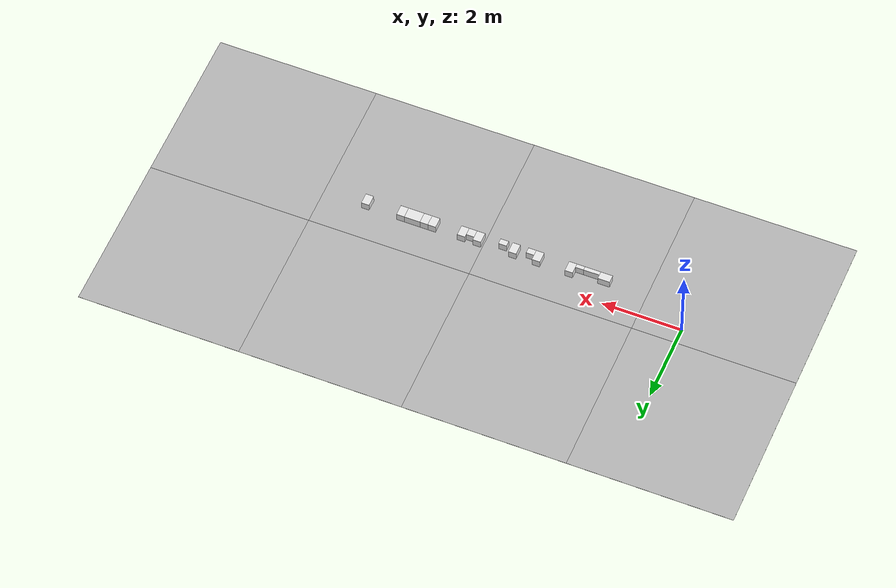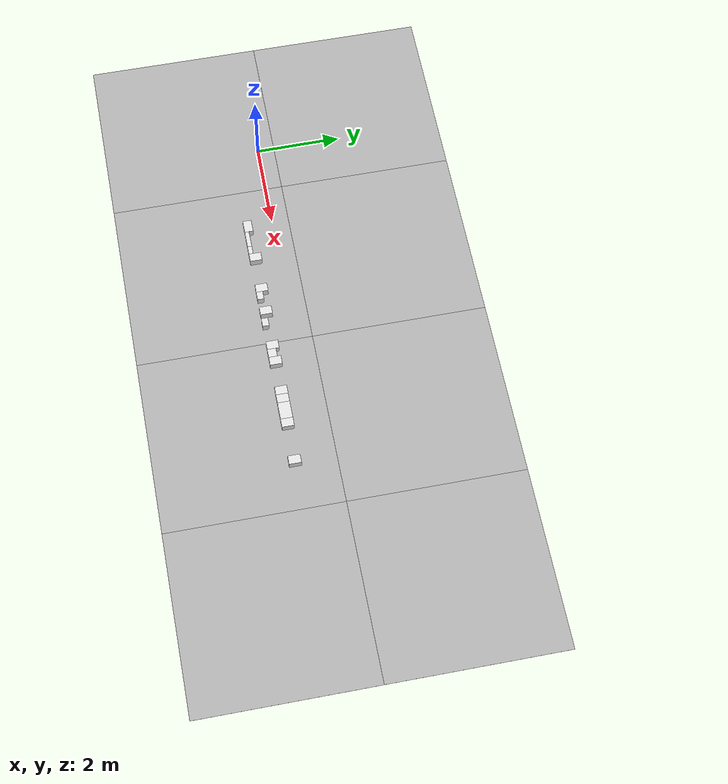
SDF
<sdf version='1.6'><world name='default'>
    <light name='sun_light' type='directional'>
      <pose frame=''>0 0 10 0 -0 0</pose>
      <diffuse>0.5 0.5 0.5 1</diffuse>
      <specular>0.1 0.1 0.1 1</specular>
      <direction>0.1 0.1 -0.9</direction>
      <attenuation>
        <range>20</range>
        <constant>0.5</constant>
        <linear>0.01</linear>
        <quadratic>0.001</quadratic>
      </attenuation>
      <cast_shadows>1</cast_shadows>
    </light>

    <model name='Tile/0-0'>
      <static>1</static>
      <link name='link'>
        <collision name='collision'>
          <geometry>
            <plane>
              <normal>0 0 1</normal>
              <size>4.096 4.096</size>
            </plane>
          </geometry>
          <surface>
            <friction>
              <ode>
                <mu>100</mu>
                <mu2>50</mu2>
              </ode>
              <torsional>
                <ode/>
              </torsional>
            </friction>
            <contact>
              <ode/>
            </contact>
            <bounce/>
          </surface>
          <max_contacts>10</max_contacts>
        </collision>
        <visual name='visual'>
          <cast_shadows>0</cast_shadows>
          <geometry>
            <plane>
              <normal>0 0 1</normal>
              <size>4.096 4.096</size>
            </plane>
          </geometry>
          <material>
            <script>
              <uri>file://materials/scripts</uri>
              <uri>file://materials/textures</uri>
              <name>Tile/aa44efc093d15b0d016b671cb8dad8b9b5925cd42bc6b331ef31decf4ba6863e</name>
            </script>
          </material>
        </visual>
        <self_collide>0</self_collide>
        <enable_wind>0</enable_wind>
        <kinematic>0</kinematic>
      </link>
      <pose frame=''>-0.952 -1.6520000000000001 0 0 -0 0</pose>
    </model>

    <model name='Tile/0-1'>
      <static>1</static>
      <link name='link'>
        <collision name='collision'>
          <geometry>
            <plane>
              <normal>0 0 1</normal>
              <size>4.096 4.096</size>
            </plane>
          </geometry>
          <surface>
            <friction>
              <ode>
                <mu>100</mu>
                <mu2>50</mu2>
              </ode>
              <torsional>
                <ode/>
              </torsional>
            </friction>
            <contact>
              <ode/>
            </contact>
            <bounce/>
          </surface>
          <max_contacts>10</max_contacts>
        </collision>
        <visual name='visual'>
          <cast_shadows>0</cast_shadows>
          <geometry>
            <plane>
              <normal>0 0 1</normal>
              <size>4.096 4.096</size>
            </plane>
          </geometry>
          <material>
            <script>
              <uri>file://materials/scripts</uri>
              <uri>file://materials/textures</uri>
              <name>Tile/6681b896b1587d54cb69aadeb5fb7247b4d6d500490292053e67105ac88ca889</name>
            </script>
          </material>
        </visual>
        <self_collide>0</self_collide>
        <enable_wind>0</enable_wind>
        <kinematic>0</kinematic>
      </link>
      <pose frame=''>-0.952 2.444 0 0 -0 0</pose>
    </model>

    <model name='Tile/1-0'>
      <static>1</static>
      <link name='link'>
        <collision name='collision'>
          <geometry>
            <plane>
              <normal>0 0 1</normal>
              <size>4.096 4.096</size>
            </plane>
          </geometry>
          <surface>
            <friction>
              <ode>
                <mu>100</mu>
                <mu2>50</mu2>
              </ode>
              <torsional>
                <ode/>
              </torsional>
            </friction>
            <contact>
              <ode/>
            </contact>
            <bounce/>
          </surface>
          <max_contacts>10</max_contacts>
        </collision>
        <visual name='visual'>
          <cast_shadows>0</cast_shadows>
          <geometry>
            <plane>
              <normal>0 0 1</normal>
              <size>4.096 4.096</size>
            </plane>
          </geometry>
          <material>
            <script>
              <uri>file://materials/scripts</uri>
              <uri>file://materials/textures</uri>
              <name>Tile/66b04c06e993a75800033641e9b5393d0fd3ce9fb1b62bc7b6392c1c421e40d7</name>
            </script>
          </material>
        </visual>
        <self_collide>0</self_collide>
        <enable_wind>0</enable_wind>
        <kinematic>0</kinematic>
      </link>
      <pose frame=''>3.144 -1.6520000000000001 0 0 -0 0</pose>
    </model>

    <model name='Tile/1-1'>
      <static>1</static>
      <link name='link'>
        <collision name='collision'>
          <geometry>
            <plane>
              <normal>0 0 1</normal>
              <size>4.096 4.096</size>
            </plane>
          </geometry>
          <surface>
            <friction>
              <ode>
                <mu>100</mu>
                <mu2>50</mu2>
              </ode>
              <torsional>
                <ode/>
              </torsional>
            </friction>
            <contact>
              <ode/>
            </contact>
            <bounce/>
          </surface>
          <max_contacts>10</max_contacts>
        </collision>
        <visual name='visual'>
          <cast_shadows>0</cast_shadows>
          <geometry>
            <plane>
              <normal>0 0 1</normal>
              <size>4.096 4.096</size>
            </plane>
          </geometry>
          <material>
            <script>
              <uri>file://materials/scripts</uri>
              <uri>file://materials/textures</uri>
              <name>Tile/13957a6de1f2afce18d7f1f64dacc2f21295e26ccf498256b0e1a51002cd5706</name>
            </script>
          </material>
        </visual>
        <self_collide>0</self_collide>
        <enable_wind>0</enable_wind>
        <kinematic>0</kinematic>
      </link>
      <pose frame=''>3.144 2.444 0 0 -0 0</pose>
    </model>

    <model name='Tile/2-0'>
      <static>1</static>
      <link name='link'>
        <collision name='collision'>
          <geometry>
            <plane>
              <normal>0 0 1</normal>
              <size>4.096 4.096</size>
            </plane>
          </geometry>
          <surface>
            <friction>
              <ode>
                <mu>100</mu>
                <mu2>50</mu2>
              </ode>
              <torsional>
                <ode/>
              </torsional>
            </friction>
            <contact>
              <ode/>
            </contact>
            <bounce/>
          </surface>
          <max_contacts>10</max_contacts>
        </collision>
        <visual name='visual'>
          <cast_shadows>0</cast_shadows>
          <geometry>
            <plane>
              <normal>0 0 1</normal>
              <size>4.096 4.096</size>
            </plane>
          </geometry>
          <material>
            <script>
              <uri>file://materials/scripts</uri>
              <uri>file://materials/textures</uri>
              <name>Tile/b36cde98840ae442a37fc71621d3c1f3b995068f80d805d7514faa7be1265c27</name>
            </script>
          </material>
        </visual>
        <self_collide>0</self_collide>
        <enable_wind>0</enable_wind>
        <kinematic>0</kinematic>
      </link>
      <pose frame=''>7.24 -1.6520000000000001 0 0 -0 0</pose>
    </model>

    <model name='Tile/2-1'>
      <static>1</static>
      <link name='link'>
        <collision name='collision'>
          <geometry>
            <plane>
              <normal>0 0 1</normal>
              <size>4.096 4.096</size>
            </plane>
          </geometry>
          <surface>
            <friction>
              <ode>
                <mu>100</mu>
                <mu2>50</mu2>
              </ode>
              <torsional>
                <ode/>
              </torsional>
            </friction>
            <contact>
              <ode/>
            </contact>
            <bounce/>
          </surface>
          <max_contacts>10</max_contacts>
        </collision>
        <visual name='visual'>
          <cast_shadows>0</cast_shadows>
          <geometry>
            <plane>
              <normal>0 0 1</normal>
              <size>4.096 4.096</size>
            </plane>
          </geometry>
          <material>
            <script>
              <uri>file://materials/scripts</uri>
              <uri>file://materials/textures</uri>
              <name>Tile/13957a6de1f2afce18d7f1f64dacc2f21295e26ccf498256b0e1a51002cd5706</name>
            </script>
          </material>
        </visual>
        <self_collide>0</self_collide>
        <enable_wind>0</enable_wind>
        <kinematic>0</kinematic>
      </link>
      <pose frame=''>7.24 2.444 0 0 -0 0</pose>
    </model>

    <model name='Tile/3-0'>
      <static>1</static>
      <link name='link'>
        <collision name='collision'>
          <geometry>
            <plane>
              <normal>0 0 1</normal>
              <size>4.096 4.096</size>
            </plane>
          </geometry>
          <surface>
            <friction>
              <ode>
                <mu>100</mu>
                <mu2>50</mu2>
              </ode>
              <torsional>
                <ode/>
              </torsional>
            </friction>
            <contact>
              <ode/>
            </contact>
            <bounce/>
          </surface>
          <max_contacts>10</max_contacts>
        </collision>
        <visual name='visual'>
          <cast_shadows>0</cast_shadows>
          <geometry>
            <plane>
              <normal>0 0 1</normal>
              <size>4.096 4.096</size>
            </plane>
          </geometry>
          <material>
            <script>
              <uri>file://materials/scripts</uri>
              <uri>file://materials/textures</uri>
              <name>Tile/1c23de3078bbeccedcda9b63546cbcf0673bc4ccec6e7212818b876aa7449bbf</name>
            </script>
          </material>
        </visual>
        <self_collide>0</self_collide>
        <enable_wind>0</enable_wind>
        <kinematic>0</kinematic>
      </link>
      <pose frame=''>11.336 -1.6520000000000001 0 0 -0 0</pose>
    </model>

    <model name='Tile/3-1'>
      <static>1</static>
      <link name='link'>
        <collision name='collision'>
          <geometry>
            <plane>
              <normal>0 0 1</normal>
              <size>4.096 4.096</size>
            </plane>
          </geometry>
          <surface>
            <friction>
              <ode>
                <mu>100</mu>
                <mu2>50</mu2>
              </ode>
              <torsional>
                <ode/>
              </torsional>
            </friction>
            <contact>
              <ode/>
            </contact>
            <bounce/>
          </surface>
          <max_contacts>10</max_contacts>
        </collision>
        <visual name='visual'>
          <cast_shadows>0</cast_shadows>
          <geometry>
            <plane>
              <normal>0 0 1</normal>
              <size>4.096 4.096</size>
            </plane>
          </geometry>
          <material>
            <script>
              <uri>file://materials/scripts</uri>
              <uri>file://materials/textures</uri>
              <name>Tile/46fa4afc2b65f052e47a09b160b3bbadb349de1e3e3e6a8a637aace7fd5ac1e2</name>
            </script>
          </material>
        </visual>
        <self_collide>0</self_collide>
        <enable_wind>0</enable_wind>
        <kinematic>0</kinematic>
      </link>
      <pose frame=''>11.336 2.444 0 0 -0 0</pose>
    </model>

    <model name='Obstacle/-5/0'>
      <pose frame=''>2.15 -0.6 0.1 0 0 -0.0</pose>
      <link name='link'>
        <inertial>
          <mass>10</mass>
          <inertia>
            <ixx>0.166667</ixx>
            <ixy>0</ixy>
            <ixz>0</ixz>
            <iyy>0.166667</iyy>
            <iyz>0</iyz>
            <izz>0.166667</izz>
          </inertia>
        </inertial>
        <collision name='collision'>
          <geometry>
            <box>
              <size>0.3 0.2 0.2</size>
            </box>
          </geometry>
          <max_contacts>10</max_contacts>
          <surface>
            <contact>
              <ode/>
            </contact>
            <bounce/>
            <friction>
              <torsional>
                <ode/>
              </torsional>
              <ode/>
            </friction>
          </surface>
        </collision>
        <visual name='visual'>
          <geometry>
            <box>
              <size>0.3 0.2 0.2</size>
            </box>
          </geometry>
          <material>
            <script>
              <name>Gazebo/White</name>
              <uri>file://media/materials/scripts/gazebo.material</uri>
            </script>
          </material>
        </visual>
        <self_collide>0</self_collide>
        <enable_wind>0</enable_wind>
        <kinematic>0</kinematic>
      </link>
    </model>

    <model name='Obstacle/-9/0'>
      <pose frame=''>2.5 -0.6499999999999999 0.1 0 0 -0.0</pose>
      <link name='link'>
        <inertial>
          <mass>10</mass>
          <inertia>
            <ixx>0.166667</ixx>
            <ixy>0</ixy>
            <ixz>0</ixz>
            <iyy>0.166667</iyy>
            <iyz>0</iyz>
            <izz>0.166667</izz>
          </inertia>
        </inertial>
        <collision name='collision'>
          <geometry>
            <box>
              <size>0.4 0.1 0.2</size>
            </box>
          </geometry>
          <max_contacts>10</max_contacts>
          <surface>
            <contact>
              <ode/>
            </contact>
            <bounce/>
            <friction>
              <torsional>
                <ode/>
              </torsional>
              <ode/>
            </friction>
          </surface>
        </collision>
        <visual name='visual'>
          <geometry>
            <box>
              <size>0.4 0.1 0.2</size>
            </box>
          </geometry>
          <material>
            <script>
              <name>Gazebo/White</name>
              <uri>file://media/materials/scripts/gazebo.material</uri>
            </script>
          </material>
        </visual>
        <self_collide>0</self_collide>
        <enable_wind>0</enable_wind>
        <kinematic>0</kinematic>
      </link>
    </model>

    <model name='Obstacle/-13/0'>
      <pose frame=''>2.8 -0.6499999999999999 0.1 0 0 -0.0</pose>
      <link name='link'>
        <inertial>
          <mass>10</mass>
          <inertia>
            <ixx>0.166667</ixx>
            <ixy>0</ixy>
            <ixz>0</ixz>
            <iyy>0.166667</iyy>
            <iyz>0</iyz>
            <izz>0.166667</izz>
          </inertia>
        </inertial>
        <collision name='collision'>
          <geometry>
            <box>
              <size>0.2 0.1 0.2</size>
            </box>
          </geometry>
          <max_contacts>10</max_contacts>
          <surface>
            <contact>
              <ode/>
            </contact>
            <bounce/>
            <friction>
              <torsional>
                <ode/>
              </torsional>
              <ode/>
            </friction>
          </surface>
        </collision>
        <visual name='visual'>
          <geometry>
            <box>
              <size>0.2 0.1 0.2</size>
            </box>
          </geometry>
          <material>
            <script>
              <name>Gazebo/White</name>
              <uri>file://media/materials/scripts/gazebo.material</uri>
            </script>
          </material>
        </visual>
        <self_collide>0</self_collide>
        <enable_wind>0</enable_wind>
        <kinematic>0</kinematic>
      </link>
    </model>

    <model name='Obstacle/-17/0'>
      <pose frame=''>3.0 -0.5599999999999999 0.1 0 0 -0.0</pose>
      <link name='link'>
        <inertial>
          <mass>10</mass>
          <inertia>
            <ixx>0.166667</ixx>
            <ixy>0</ixy>
            <ixz>0</ixz>
            <iyy>0.166667</iyy>
            <iyz>0</iyz>
            <izz>0.166667</izz>
          </inertia>
        </inertial>
        <collision name='collision'>
          <geometry>
            <box>
              <size>0.2 0.28 0.2</size>
            </box>
          </geometry>
          <max_contacts>10</max_contacts>
          <surface>
            <contact>
              <ode/>
            </contact>
            <bounce/>
            <friction>
              <torsional>
                <ode/>
              </torsional>
              <ode/>
            </friction>
          </surface>
        </collision>
        <visual name='visual'>
          <geometry>
            <box>
              <size>0.2 0.28 0.2</size>
            </box>
          </geometry>
          <material>
            <script>
              <name>Gazebo/White</name>
              <uri>file://media/materials/scripts/gazebo.material</uri>
            </script>
          </material>
        </visual>
        <self_collide>0</self_collide>
        <enable_wind>0</enable_wind>
        <kinematic>0</kinematic>
      </link>
    </model>

    <model name='Obstacle/-24/0'>
      <pose frame=''>3.83 -0.5599999999999999 0.1 0 0 -0.0</pose>
      <link name='link'>
        <inertial>
          <mass>10</mass>
          <inertia>
            <ixx>0.166667</ixx>
            <ixy>0</ixy>
            <ixz>0</ixz>
            <iyy>0.166667</iyy>
            <iyz>0</iyz>
            <izz>0.166667</izz>
          </inertia>
        </inertial>
        <collision name='collision'>
          <geometry>
            <box>
              <size>0.2 0.28 0.2</size>
            </box>
          </geometry>
          <max_contacts>10</max_contacts>
          <surface>
            <contact>
              <ode/>
            </contact>
            <bounce/>
            <friction>
              <torsional>
                <ode/>
              </torsional>
              <ode/>
            </friction>
          </surface>
        </collision>
        <visual name='visual'>
          <geometry>
            <box>
              <size>0.2 0.28 0.2</size>
            </box>
          </geometry>
          <material>
            <script>
              <name>Gazebo/White</name>
              <uri>file://media/materials/scripts/gazebo.material</uri>
            </script>
          </material>
        </visual>
        <self_collide>0</self_collide>
        <enable_wind>0</enable_wind>
        <kinematic>0</kinematic>
      </link>
    </model>

    <model name='Obstacle/-28/0'>
      <pose frame=''>4.03 -0.625 0.1 0 0 -0.0</pose>
      <link name='link'>
        <inertial>
          <mass>10</mass>
          <inertia>
            <ixx>0.166667</ixx>
            <ixy>0</ixy>
            <ixz>0</ixz>
            <iyy>0.166667</iyy>
            <iyz>0</iyz>
            <izz>0.166667</izz>
          </inertia>
        </inertial>
        <collision name='collision'>
          <geometry>
            <box>
              <size>0.2 0.15 0.2</size>
            </box>
          </geometry>
          <max_contacts>10</max_contacts>
          <surface>
            <contact>
              <ode/>
            </contact>
            <bounce/>
            <friction>
              <torsional>
                <ode/>
              </torsional>
              <ode/>
            </friction>
          </surface>
        </collision>
        <visual name='visual'>
          <geometry>
            <box>
              <size>0.2 0.15 0.2</size>
            </box>
          </geometry>
          <material>
            <script>
              <name>Gazebo/White</name>
              <uri>file://media/materials/scripts/gazebo.material</uri>
            </script>
          </material>
        </visual>
        <self_collide>0</self_collide>
        <enable_wind>0</enable_wind>
        <kinematic>0</kinematic>
      </link>
    </model>

    <model name='Obstacle/-35/0'>
      <pose frame=''>4.43 -0.5599999999999999 0.1 0 0 -0.0</pose>
      <link name='link'>
        <inertial>
          <mass>10</mass>
          <inertia>
            <ixx>0.166667</ixx>
            <ixy>0</ixy>
            <ixz>0</ixz>
            <iyy>0.166667</iyy>
            <iyz>0</iyz>
            <izz>0.166667</izz>
          </inertia>
        </inertial>
        <collision name='collision'>
          <geometry>
            <box>
              <size>0.2 0.28 0.2</size>
            </box>
          </geometry>
          <max_contacts>10</max_contacts>
          <surface>
            <contact>
              <ode/>
            </contact>
            <bounce/>
            <friction>
              <torsional>
                <ode/>
              </torsional>
              <ode/>
            </friction>
          </surface>
        </collision>
        <visual name='visual'>
          <geometry>
            <box>
              <size>0.2 0.28 0.2</size>
            </box>
          </geometry>
          <material>
            <script>
              <name>Gazebo/White</name>
              <uri>file://media/materials/scripts/gazebo.material</uri>
            </script>
          </material>
        </visual>
        <self_collide>0</self_collide>
        <enable_wind>0</enable_wind>
        <kinematic>0</kinematic>
      </link>
    </model>

    <model name='Obstacle/-42/0'>
      <pose frame=''>4.7299999999999995 -0.625 0.1 0 0 -0.0</pose>
      <link name='link'>
        <inertial>
          <mass>10</mass>
          <inertia>
            <ixx>0.166667</ixx>
            <ixy>0</ixy>
            <ixz>0</ixz>
            <iyy>0.166667</iyy>
            <iyz>0</iyz>
            <izz>0.166667</izz>
          </inertia>
        </inertial>
        <collision name='collision'>
          <geometry>
            <box>
              <size>0.2 0.15 0.2</size>
            </box>
          </geometry>
          <max_contacts>10</max_contacts>
          <surface>
            <contact>
              <ode/>
            </contact>
            <bounce/>
            <friction>
              <torsional>
                <ode/>
              </torsional>
              <ode/>
            </friction>
          </surface>
        </collision>
        <visual name='visual'>
          <geometry>
            <box>
              <size>0.2 0.15 0.2</size>
            </box>
          </geometry>
          <material>
            <script>
              <name>Gazebo/White</name>
              <uri>file://media/materials/scripts/gazebo.material</uri>
            </script>
          </material>
        </visual>
        <self_collide>0</self_collide>
        <enable_wind>0</enable_wind>
        <kinematic>0</kinematic>
      </link>
    </model>

    <model name='Obstacle/-49/0'>
      <pose frame=''>5.33 -0.5599999999999999 0.1 0 0 -0.0</pose>
      <link name='link'>
        <inertial>
          <mass>10</mass>
          <inertia>
            <ixx>0.166667</ixx>
            <ixy>0</ixy>
            <ixz>0</ixz>
            <iyy>0.166667</iyy>
            <iyz>0</iyz>
            <izz>0.166667</izz>
          </inertia>
        </inertial>
        <collision name='collision'>
          <geometry>
            <box>
              <size>0.2 0.28 0.2</size>
            </box>
          </geometry>
          <max_contacts>10</max_contacts>
          <surface>
            <contact>
              <ode/>
            </contact>
            <bounce/>
            <friction>
              <torsional>
                <ode/>
              </torsional>
              <ode/>
            </friction>
          </surface>
        </collision>
        <visual name='visual'>
          <geometry>
            <box>
              <size>0.2 0.28 0.2</size>
            </box>
          </geometry>
          <material>
            <script>
              <name>Gazebo/White</name>
              <uri>file://media/materials/scripts/gazebo.material</uri>
            </script>
          </material>
        </visual>
        <self_collide>0</self_collide>
        <enable_wind>0</enable_wind>
        <kinematic>0</kinematic>
      </link>
    </model>

    <model name='Obstacle/-53/0'>
      <pose frame=''>5.53 -0.6 0.1 0 0 -0.0</pose>
      <link name='link'>
        <inertial>
          <mass>10</mass>
          <inertia>
            <ixx>0.166667</ixx>
            <ixy>0</ixy>
            <ixz>0</ixz>
            <iyy>0.166667</iyy>
            <iyz>0</iyz>
            <izz>0.166667</izz>
          </inertia>
        </inertial>
        <collision name='collision'>
          <geometry>
            <box>
              <size>0.2 0.2 0.2</size>
            </box>
          </geometry>
          <max_contacts>10</max_contacts>
          <surface>
            <contact>
              <ode/>
            </contact>
            <bounce/>
            <friction>
              <torsional>
                <ode/>
              </torsional>
              <ode/>
            </friction>
          </surface>
        </collision>
        <visual name='visual'>
          <geometry>
            <box>
              <size>0.2 0.2 0.2</size>
            </box>
          </geometry>
          <material>
            <script>
              <name>Gazebo/White</name>
              <uri>file://media/materials/scripts/gazebo.material</uri>
            </script>
          </material>
        </visual>
        <self_collide>0</self_collide>
        <enable_wind>0</enable_wind>
        <kinematic>0</kinematic>
      </link>
    </model>

    <model name='Obstacle/-57/0'>
      <pose frame=''>5.73 -0.5599999999999999 0.1 0 0 -0.0</pose>
      <link name='link'>
        <inertial>
          <mass>10</mass>
          <inertia>
            <ixx>0.166667</ixx>
            <ixy>0</ixy>
            <ixz>0</ixz>
            <iyy>0.166667</iyy>
            <iyz>0</iyz>
            <izz>0.166667</izz>
          </inertia>
        </inertial>
        <collision name='collision'>
          <geometry>
            <box>
              <size>0.2 0.28 0.2</size>
            </box>
          </geometry>
          <max_contacts>10</max_contacts>
          <surface>
            <contact>
              <ode/>
            </contact>
            <bounce/>
            <friction>
              <torsional>
                <ode/>
              </torsional>
              <ode/>
            </friction>
          </surface>
        </collision>
        <visual name='visual'>
          <geometry>
            <box>
              <size>0.2 0.28 0.2</size>
            </box>
          </geometry>
          <material>
            <script>
              <name>Gazebo/White</name>
              <uri>file://media/materials/scripts/gazebo.material</uri>
            </script>
          </material>
        </visual>
        <self_collide>0</self_collide>
        <enable_wind>0</enable_wind>
        <kinematic>0</kinematic>
      </link>
    </model>

    <model name='Obstacle/-64/0'>
      <pose frame=''>6.48 -0.5599999999999999 0.1 0 0 -0.0</pose>
      <link name='link'>
        <inertial>
          <mass>10</mass>
          <inertia>
            <ixx>0.166667</ixx>
            <ixy>0</ixy>
            <ixz>0</ixz>
            <iyy>0.166667</iyy>
            <iyz>0</iyz>
            <izz>0.166667</izz>
          </inertia>
        </inertial>
        <collision name='collision'>
          <geometry>
            <box>
              <size>0.2 0.28 0.2</size>
            </box>
          </geometry>
          <max_contacts>10</max_contacts>
          <surface>
            <contact>
              <ode/>
            </contact>
            <bounce/>
            <friction>
              <torsional>
                <ode/>
              </torsional>
              <ode/>
            </friction>
          </surface>
        </collision>
        <visual name='visual'>
          <geometry>
            <box>
              <size>0.2 0.28 0.2</size>
            </box>
          </geometry>
          <material>
            <script>
              <name>Gazebo/White</name>
              <uri>file://media/materials/scripts/gazebo.material</uri>
            </script>
          </material>
        </visual>
        <self_collide>0</self_collide>
        <enable_wind>0</enable_wind>
        <kinematic>0</kinematic>
      </link>
    </model>

    <model name='Obstacle/-68/0'>
      <pose frame=''>6.680000000000001 -0.5599999999999999 0.1 0 0 -0.0</pose>
      <link name='link'>
        <inertial>
          <mass>10</mass>
          <inertia>
            <ixx>0.166667</ixx>
            <ixy>0</ixy>
            <ixz>0</ixz>
            <iyy>0.166667</iyy>
            <iyz>0</iyz>
            <izz>0.166667</izz>
          </inertia>
        </inertial>
        <collision name='collision'>
          <geometry>
            <box>
              <size>0.2 0.28 0.2</size>
            </box>
          </geometry>
          <max_contacts>10</max_contacts>
          <surface>
            <contact>
              <ode/>
            </contact>
            <bounce/>
            <friction>
              <torsional>
                <ode/>
              </torsional>
              <ode/>
            </friction>
          </surface>
        </collision>
        <visual name='visual'>
          <geometry>
            <box>
              <size>0.2 0.28 0.2</size>
            </box>
          </geometry>
          <material>
            <script>
              <name>Gazebo/White</name>
              <uri>file://media/materials/scripts/gazebo.material</uri>
            </script>
          </material>
        </visual>
        <self_collide>0</self_collide>
        <enable_wind>0</enable_wind>
        <kinematic>0</kinematic>
      </link>
    </model>

    <model name='Obstacle/-72/0'>
      <pose frame=''>6.980000000000001 -0.5599999999999999 0.1 0 0 -0.0</pose>
      <link name='link'>
        <inertial>
          <mass>10</mass>
          <inertia>
            <ixx>0.166667</ixx>
            <ixy>0</ixy>
            <ixz>0</ixz>
            <iyy>0.166667</iyy>
            <iyz>0</iyz>
            <izz>0.166667</izz>
          </inertia>
        </inertial>
        <collision name='collision'>
          <geometry>
            <box>
              <size>0.4 0.28 0.2</size>
            </box>
          </geometry>
          <max_contacts>10</max_contacts>
          <surface>
            <contact>
              <ode/>
            </contact>
            <bounce/>
            <friction>
              <torsional>
                <ode/>
              </torsional>
              <ode/>
            </friction>
          </surface>
        </collision>
        <visual name='visual'>
          <geometry>
            <box>
              <size>0.4 0.28 0.2</size>
            </box>
          </geometry>
          <material>
            <script>
              <name>Gazebo/White</name>
              <uri>file://media/materials/scripts/gazebo.material</uri>
            </script>
          </material>
        </visual>
        <self_collide>0</self_collide>
        <enable_wind>0</enable_wind>
        <kinematic>0</kinematic>
      </link>
    </model>

    <model name='Obstacle/-76/0'>
      <pose frame=''>7.280000000000001 -0.5599999999999999 0.1 0 0 -0.0</pose>
      <link name='link'>
        <inertial>
          <mass>10</mass>
          <inertia>
            <ixx>0.166667</ixx>
            <ixy>0</ixy>
            <ixz>0</ixz>
            <iyy>0.166667</iyy>
            <iyz>0</iyz>
            <izz>0.166667</izz>
          </inertia>
        </inertial>
        <collision name='collision'>
          <geometry>
            <box>
              <size>0.2 0.28 0.2</size>
            </box>
          </geometry>
          <max_contacts>10</max_contacts>
          <surface>
            <contact>
              <ode/>
            </contact>
            <bounce/>
            <friction>
              <torsional>
                <ode/>
              </torsional>
              <ode/>
            </friction>
          </surface>
        </collision>
        <visual name='visual'>
          <geometry>
            <box>
              <size>0.2 0.28 0.2</size>
            </box>
          </geometry>
          <material>
            <script>
              <name>Gazebo/White</name>
              <uri>file://media/materials/scripts/gazebo.material</uri>
            </script>
          </material>
        </visual>
        <self_collide>0</self_collide>
        <enable_wind>0</enable_wind>
        <kinematic>0</kinematic>
      </link>
    </model>

    <model name='Obstacle/-83/0'>
      <pose frame=''>8.180000000000001 -0.5599999999999999 0.1 0 0 -0.0</pose>
      <link name='link'>
        <inertial>
          <mass>10</mass>
          <inertia>
            <ixx>0.166667</ixx>
            <ixy>0</ixy>
            <ixz>0</ixz>
            <iyy>0.166667</iyy>
            <iyz>0</iyz>
            <izz>0.166667</izz>
          </inertia>
        </inertial>
        <collision name='collision'>
          <geometry>
            <box>
              <size>0.2 0.28 0.2</size>
            </box>
          </geometry>
          <max_contacts>10</max_contacts>
          <surface>
            <contact>
              <ode/>
            </contact>
            <bounce/>
            <friction>
              <torsional>
                <ode/>
              </torsional>
              <ode/>
            </friction>
          </surface>
        </collision>
        <visual name='visual'>
          <geometry>
            <box>
              <size>0.2 0.28 0.2</size>
            </box>
          </geometry>
          <material>
            <script>
              <name>Gazebo/White</name>
              <uri>file://media/materials/scripts/gazebo.material</uri>
            </script>
          </material>
        </visual>
        <self_collide>0</self_collide>
        <enable_wind>0</enable_wind>
        <kinematic>0</kinematic>
      </link>
    </model>
    </world></sdf>
